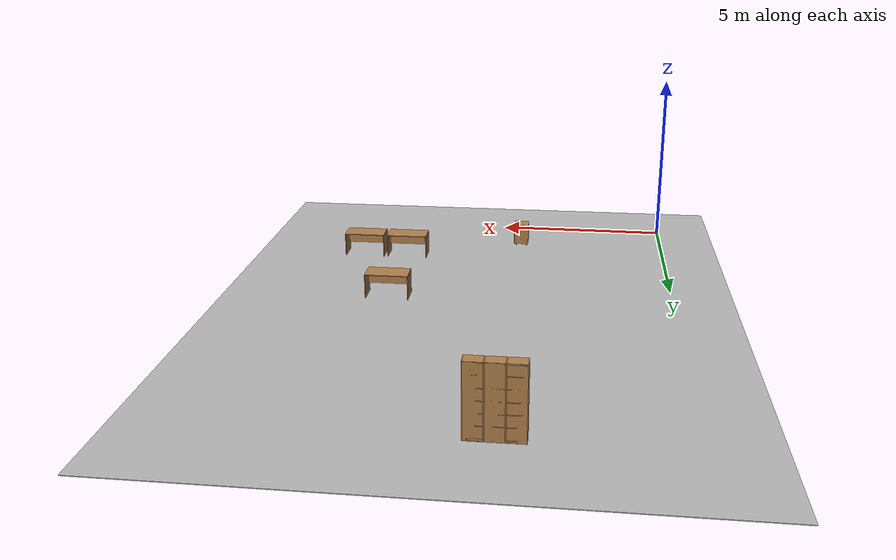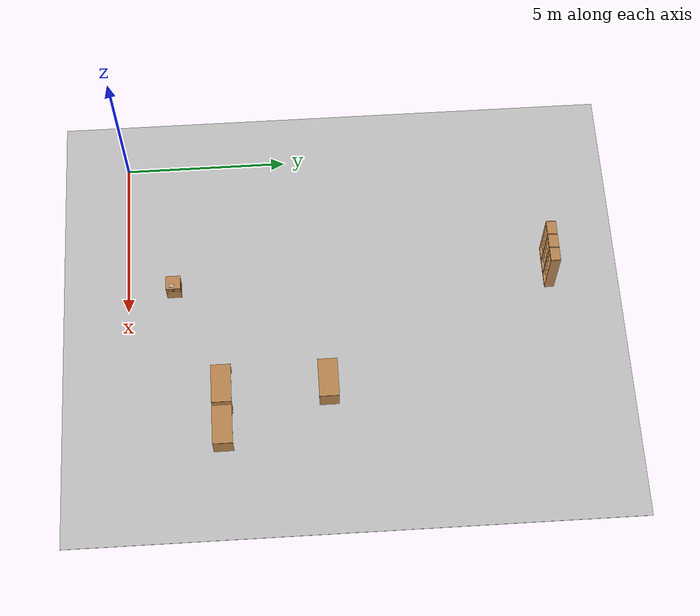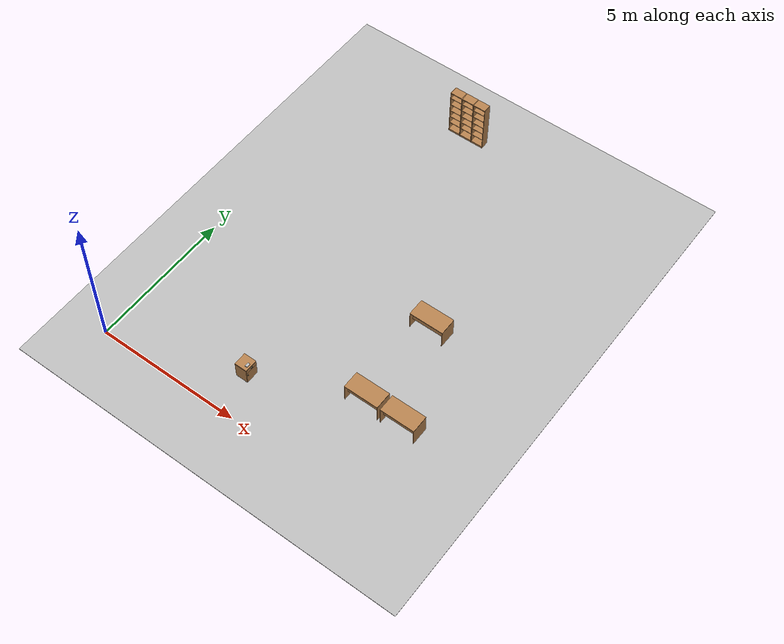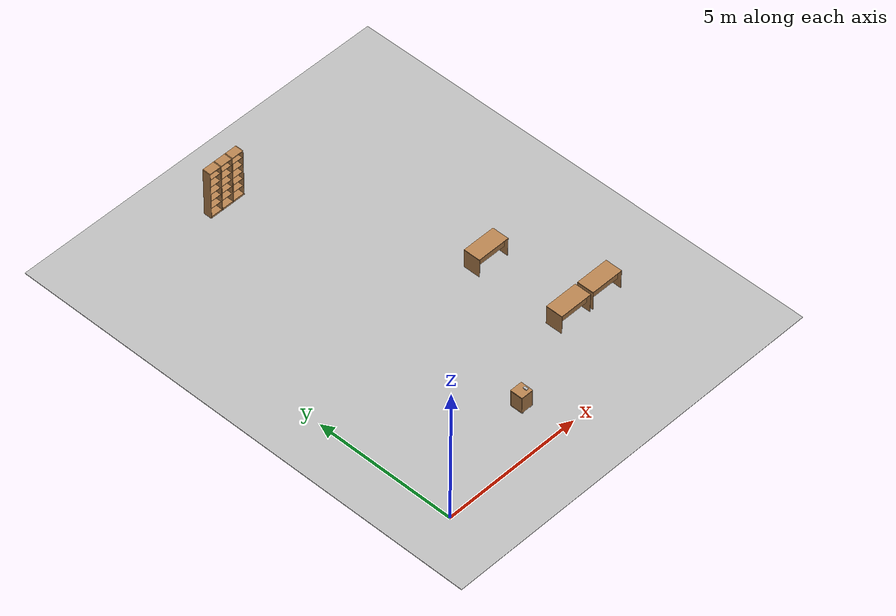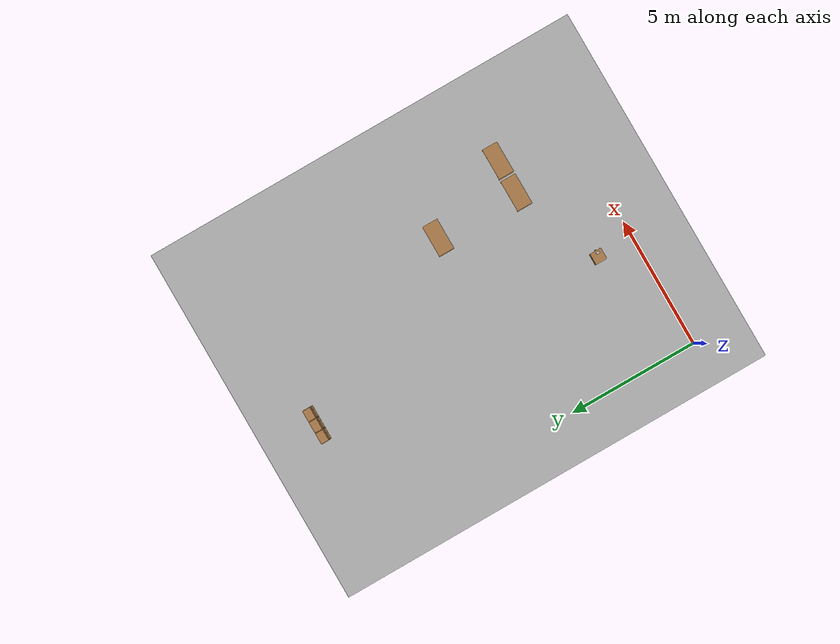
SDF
<sdf version="1.6">
 <world name="default">
  <model name="gplane">
   <pose>5.0375 6.59 0 0 -0 0</pose>
   <link name="body">
    <collision name="gplane_coll">
     <geometry><plane><normal>0 0 1</normal><size>10.075 13.18</size></plane></geometry>
     <surface><contact><ode><kp>1e+06</kp><kd>1</kd></ode></contact></surface>
     <laser_retro>2000</laser_retro>
    </collision>
    <visual name="gplane_vis">
     <geometry><plane><normal>0 0 1</normal><size>10.075 13.18</size></plane></geometry>
     <material>
      <script>
       <uri>model://base_materials/carpet/scripts</uri>
       <uri>model://base_materials/carpet/textures</uri>
       <name>carpet/carpet01</name>
      </script>
     </material>
     <cast_shadows>0</cast_shadows>
    </visual>
    <velocity_decay><linear>0</linear><angular>0</angular></velocity_decay>
   </link>
   <static>1</static>
  </model>
  <model name="wagon">
   <link name="link">
    <inertial>
     <mass>10</mass>
     <inertia><ixx>1</ixx><ixy>0</ixy><ixz>0</ixz><iyy>1</iyy><iyz>0</iyz><izz>1</izz></inertia>
    </inertial>
    <visual name="left_board">
     <pose>-0.2325 0.01 0.345 0 -0 0</pose>
     <geometry><box><size>0.415 0.02 0.59</size></box></geometry>
     <material>
      <script><uri>model://base_materials/wood/scripts/wood.material</uri><name>base_materials/wood</name></script>
     </material>
    </visual>
    <collision name="collision_left_board">
     <pose>-0.2325 0.01 0.345 0 -0 0</pose>
     <geometry><box><size>0.415 0.02 0.59</size></box></geometry>
    </collision>
    <visual name="right_board">
     <pose>-0.2325 0.4325 0.345 0 -0 0</pose>
     <geometry><box><size>0.415 0.02 0.59</size></box></geometry>
     <material>
      <script><uri>model://base_materials/wood/scripts/wood.material</uri><name>base_materials/wood</name></script>
     </material>
    </visual>
    <collision name="collision_right_board">
     <pose>-0.2325 0.4325 0.345 0 -0 0</pose>
     <geometry><box><size>0.415 0.02 0.59</size></box></geometry>
    </collision>
    <visual name="top_board">
     <pose>-0.22 0.2225 0.655 0 -0 0</pose>
     <geometry><box><size>0.44 0.445 0.03</size></box></geometry>
     <material>
      <script><uri>model://base_materials/wood/scripts/wood.material</uri><name>base_materials/wood</name></script>
     </material>
    </visual>
    <collision name="collision_top_board">
     <pose>-0.22 0.2225 0.655 0 -0 0</pose>
     <geometry><box><size>0.44 0.445 0.03</size></box></geometry>
    </collision>
    <visual name="back_board">
     <pose>-0.425 0.2225 0.345 0 -0 0</pose>
     <geometry><box><size>0.02 0.405 0.59</size></box></geometry>
     <material>
      <script><uri>model://base_materials/wood/scripts/wood.material</uri><name>base_materials/wood</name></script>
     </material>
    </visual>
    <collision name="collision_back_board">
     <pose>-0.425 0.2225 0.345 0 -0 0</pose>
     <geometry><box><size>0.02 0.405 0.59</size></box></geometry>
    </collision>
    <visual name="bottom_board">
     <pose>-0.2325 0.2225 0.06 0 -0 0</pose>
     <geometry><box><size>0.415 0.405 0.02</size></box></geometry>
     <material>
      <script><uri>model://base_materials/wood/scripts/wood.material</uri><name>base_materials/wood</name></script>
     </material>
    </visual>
    <collision name="collision_bottom_board">
     <pose>-0.2325 0.2225 0.06 0 -0 0</pose>
     <geometry><box><size>0.415 0.405 0.02</size></box></geometry>
    </collision>
    <visual name="1st_drawer">
     <pose>-0.0125 0.2225 0.57 0 -0 0</pose>
     <geometry><box><size>0.025 0.445 0.14</size></box></geometry>
     <material>
      <script><uri>model://base_materials/wood/scripts/wood.material</uri><name>base_materials/wood</name></script>
     </material>
    </visual>
    <collision name="collision_1st_drawer">
     <pose>-0.0125 0.2225 0.57 0 -0 0</pose>
     <geometry><box><size>0.025 0.445 0.14</size></box></geometry>
    </collision>
    <visual name="1st_drawer_handle_l1">
     <pose>0.0115 0.1895 0.6 3.14159 1.57079 3.14159</pose>
     <geometry><cylinder><radius>0.007</radius><length>0.023</length></cylinder></geometry>
     <material>
      <ambient>0.18431 0.3098 0.3098 1</ambient>
      <diffuse>0.18431 0.3098 0.3098 1</diffuse>
      <specular>0.1 0.1 0.1 1</specular>
     </material>
    </visual>
    <collision name="collision_1st_drawer_handle_l1">
     <pose>0.0115 0.1895 0.6 3.14159 1.57079 3.14159</pose>
     <geometry><cylinder><radius>0.007</radius><length>0.023</length></cylinder></geometry>
    </collision>
    <visual name="1st_drawer_handle_l2">
     <pose>0.023 0.1895 0.6 0 -0 0</pose>
     <geometry><sphere><radius>0.007</radius></sphere></geometry>
     <material>
      <ambient>0.18431 0.3098 0.3098 1</ambient>
      <diffuse>0.18431 0.3098 0.3098 1</diffuse>
      <specular>0.1 0.1 0.1 1</specular>
     </material>
    </visual>
    <collision name="collision_1st_drawer_handle_l2">
     <pose>0.023 0.1895 0.6 0 -0 0</pose>
     <geometry><sphere><radius>0.007</radius></sphere></geometry>
    </collision>
    <visual name="1st_drawer_handle_r1">
     <pose>0.0115 0.2555 0.6 3.14159 1.57079 3.14159</pose>
     <geometry><cylinder><radius>0.007</radius><length>0.023</length></cylinder></geometry>
     <material>
      <ambient>0.18431 0.3098 0.3098 1</ambient>
      <diffuse>0.18431 0.3098 0.3098 1</diffuse>
      <specular>0.1 0.1 0.1 1</specular>
     </material>
    </visual>
    <collision name="collision_1st_drawer_handle_r1">
     <pose>0.0115 0.2555 0.6 3.14159 1.57079 3.14159</pose>
     <geometry><cylinder><radius>0.007</radius><length>0.023</length></cylinder></geometry>
    </collision>
    <visual name="1st_drawer_handle_r2">
     <pose>0.023 0.2555 0.6 0 -0 0</pose>
     <geometry><sphere><radius>0.007</radius></sphere></geometry>
     <material>
      <ambient>0.18431 0.3098 0.3098 1</ambient>
      <diffuse>0.18431 0.3098 0.3098 1</diffuse>
      <specular>0.1 0.1 0.1 1</specular>
     </material>
    </visual>
    <collision name="collision_1st_drawer_handle_r2">
     <pose>0.023 0.2555 0.6 0 -0 0</pose>
     <geometry><sphere><radius>0.007</radius></sphere></geometry>
    </collision>
    <visual name="1st_drawer_handle_center">
     <pose>0.023 0.2225 0.6 1.5708 -0 0</pose>
     <geometry><cylinder><radius>0.007</radius><length>0.066</length></cylinder></geometry>
     <material>
      <ambient>0.18431 0.3098 0.3098 1</ambient>
      <diffuse>0.18431 0.3098 0.3098 1</diffuse>
      <specular>0.1 0.1 0.1 1</specular>
     </material>
    </visual>
    <collision name="collision_1st_drawer_handle_center">
     <pose>0.023 0.2225 0.6 1.5708 -0 0</pose>
     <geometry><cylinder><radius>0.007</radius><length>0.066</length></cylinder></geometry>
    </collision>
    <visual name="2nd_drawer">
     <pose>-0.0125 0.2225 0.275 0 -0 0</pose>
     <geometry><box><size>0.025 0.445 0.45</size></box></geometry>
     <material>
      <script><uri>model://base_materials/wood/scripts/wood.material</uri><name>base_materials/wood</name></script>
     </material>
    </visual>
    <collision name="collision_2nd_drawer">
     <pose>-0.0125 0.2225 0.275 0 -0 0</pose>
     <geometry><box><size>0.025 0.445 0.45</size></box></geometry>
    </collision>
    <visual name="2nd_drawer_handle_top1">
     <pose>0.0115 0.04 0.47 3.14159 1.57079 3.14159</pose>
     <geometry><cylinder><radius>0.007</radius><length>0.023</length></cylinder></geometry>
     <material>
      <ambient>0.18431 0.3098 0.3098 1</ambient>
      <diffuse>0.18431 0.3098 0.3098 1</diffuse>
      <specular>0.1 0.1 0.1 1</specular>
     </material>
    </visual>
    <collision name="collision_2nd_drawer_handle_top1">
     <pose>0.0115 0.04 0.47 3.14159 1.57079 3.14159</pose>
     <geometry><cylinder><radius>0.007</radius><length>0.023</length></cylinder></geometry>
    </collision>
    <visual name="2nd_drawer_handle_top2">
     <pose>0.023 0.04 0.47 0 -0 0</pose>
     <geometry><sphere><radius>0.007</radius></sphere></geometry>
     <material>
      <ambient>0.18431 0.3098 0.3098 1</ambient>
      <diffuse>0.18431 0.3098 0.3098 1</diffuse>
      <specular>0.1 0.1 0.1 1</specular>
     </material>
    </visual>
    <collision name="2nd_drawer_handle_top2">
     <pose>0.023 0.04 0.47 0 -0 0</pose>
     <geometry><sphere><radius>0.007</radius></sphere></geometry>
    </collision>
    <visual name="2nd_drawer_handle_bottom1">
     <pose>0.0115 0.04 0.404 3.14159 1.57079 3.14159</pose>
     <geometry><cylinder><radius>0.007</radius><length>0.023</length></cylinder></geometry>
     <material>
      <ambient>0.18431 0.3098 0.3098 1</ambient>
      <diffuse>0.18431 0.3098 0.3098 1</diffuse>
      <specular>0.1 0.1 0.1 1</specular>
     </material>
    </visual>
    <collision name="collision_2nd_drawer_handle_bottom1">
     <pose>0.0115 0.04 0.404 3.14159 1.57079 3.14159</pose>
     <geometry><cylinder><radius>0.007</radius><length>0.023</length></cylinder></geometry>
    </collision>
    <visual name="2nd_drawer_handle_bottom2">
     <pose>0.023 0.04 0.404 0 -0 0</pose>
     <geometry><sphere><radius>0.007</radius></sphere></geometry>
     <material>
      <ambient>0.18431 0.3098 0.3098 1</ambient>
      <diffuse>0.18431 0.3098 0.3098 1</diffuse>
      <specular>0.1 0.1 0.1 1</specular>
     </material>
    </visual>
    <collision name="2nd_drawer_handle_bottom2">
     <pose>0.023 0.04 0.404 0 -0 0</pose>
     <geometry><sphere><radius>0.007</radius></sphere></geometry>
    </collision>
    <visual name="2nd_drawer_handle_center">
     <pose>0.023 0.04 0.437 0 -0 0</pose>
     <geometry><cylinder><radius>0.007</radius><length>0.066</length></cylinder></geometry>
     <material>
      <ambient>0.18431 0.3098 0.3098 1</ambient>
      <diffuse>0.18431 0.3098 0.3098 1</diffuse>
      <specular>0.1 0.1 0.1 1</specular>
     </material>
    </visual>
    <collision name="collision_2nd_drawer_handle_center">
     <pose>0.023 0.04 0.437 0 -0 0</pose>
     <geometry><cylinder><radius>0.007</radius><length>0.066</length></cylinder></geometry>
    </collision>
    <visual name="left_front_caster">
     <pose>-0.07 0.025 0.025 3.14159 1.57079 3.14159</pose>
     <geometry><cylinder><radius>0.025</radius><length>0.035</length></cylinder></geometry>
     <material><script><name>Gazebo/Black</name><uri>__default__</uri></script></material>
    </visual>
    <collision name="collision_left_front_caster">
     <pose>-0.07 0.025 0.025 3.14159 1.57079 3.14159</pose>
     <geometry><cylinder><radius>0.025</radius><length>0.035</length></cylinder></geometry>
    </collision>
    <visual name="right_front_caster">
     <pose>-0.07 0.42 0.025 3.14159 1.57079 3.14159</pose>
     <geometry><cylinder><radius>0.025</radius><length>0.035</length></cylinder></geometry>
     <material><script><name>Gazebo/Black</name><uri>__default__</uri></script></material>
    </visual>
    <collision name="collision_right_front_caster">
     <pose>-0.07 0.42 0.025 3.14159 1.57079 3.14159</pose>
     <geometry><cylinder><radius>0.025</radius><length>0.035</length></cylinder></geometry>
    </collision>
    <visual name="left_back_caster">
     <pose>-0.39 0.025 0.025 3.14159 1.57079 3.14159</pose>
     <geometry><cylinder><radius>0.025</radius><length>0.035</length></cylinder></geometry>
     <material><script><name>Gazebo/Black</name><uri>__default__</uri></script></material>
    </visual>
    <collision name="collision_left_back_caster">
     <pose>-0.39 0.025 0.025 3.14159 1.57079 3.14159</pose>
     <geometry><cylinder><radius>0.025</radius><length>0.035</length></cylinder></geometry>
    </collision>
    <visual name="right_back_caster">
     <pose>-0.39 0.42 0.025 3.14159 1.57079 3.14159</pose>
     <geometry><cylinder><radius>0.025</radius><length>0.035</length></cylinder></geometry>
     <material><script><name>Gazebo/Black</name><uri>__default__</uri></script></material>
    </visual>
    <collision name="collision_right_back_caster">
     <pose>-0.39 0.42 0.025 3.14159 1.57079 3.14159</pose>
     <geometry><cylinder><radius>0.025</radius><length>0.035</length></cylinder></geometry>
    </collision>
    <velocity_decay><linear>0</linear><angular>0</angular></velocity_decay>
   </link>
   <static>1</static>
   <pose>4.6 1.2 0 0 -0 0</pose>
  </model>
  <model name="nasal_cupsul">
   <link name="link">
    <inertial>
     <mass>0.1</mass>
     <inertia><ixx>0.0001</ixx><ixy>0</ixy><ixz>0</ixz><iyy>0.0001</iyy><iyz>0</iyz><izz>0.0001</izz></inertia>
    </inertial>
    <visual name="capsul">
     <geometry><box><size>0.083 0.135 0.026</size></box></geometry>
     <material>
      <script>
       <uri>model://nasal_inflammation_capsul/scripts</uri>
       <uri>model://nasal_inflammation_capsul/textures</uri>
       <name>oral_medicine/nasal_inflammation_capsule</name>
      </script>
     </material>
    </visual>
    <collision name="collision_capsul">
     <geometry><box><size>0.083 0.135 0.026</size></box></geometry>
     <surface>
      <bounce><restitution_coefficient>0.2</restitution_coefficient><threshold>0</threshold></bounce>
      <contact><ode><max_vel>10</max_vel></ode></contact>
     </surface>
    </collision>
    <velocity_decay><linear>0</linear><angular>0</angular></velocity_decay>
   </link>
   <static>0</static>
   <pose>4.50002 1.37996 0.683 0 0 -0.00293</pose>
  </model>
  <model name="office_desk01">
   <link name="link">
    <inertial>
     <mass>10</mass>
     <inertia><ixx>1</ixx><ixy>0</ixy><ixz>0</ixz><iyy>1</iyy><iyz>0</iyz><izz>1</izz></inertia>
    </inertial>
    <visual name="top_board">
     <pose>-0.3 0.6 0.69 0 -0 0</pose>
     <geometry><box><size>0.6 1.2 0.02</size></box></geometry>
     <material>
      <script>
       <uri>model://base_materials/wood/scripts/wood.material</uri>
       <name>base_materials/dark_wood</name>
      </script>
     </material>
    </visual>
    <collision name="collision_top_board">
     <pose>-0.3 0.6 0.69 0 -0 0</pose>
     <geometry><box><size>0.6 1.2 0.02</size></box></geometry>
    </collision>
    <visual name="left_board">
     <pose>-0.3 0.01 0.34 0 -0 0</pose>
     <geometry><box><size>0.6 0.02 0.68</size></box></geometry>
     <material>
      <script>
       <uri>model://base_materials/wood/scripts/wood.material</uri>
       <name>base_materials/dark_wood</name>
      </script>
     </material>
    </visual>
    <collision name="collision_left_board">
     <pose>-0.3 0.01 0.34 0 -0 0</pose>
     <geometry><box><size>0.6 0.02 0.68</size></box></geometry>
    </collision>
    <visual name="right_board">
     <pose>-0.3 1.19 0.34 0 -0 0</pose>
     <geometry><box><size>0.6 0.02 0.68</size></box></geometry>
     <material>
      <script>
       <uri>model://base_materials/wood/scripts/wood.material</uri>
       <name>base_materials/dark_wood</name>
      </script>
     </material>
    </visual>
    <collision name="collision_right_board">
     <pose>-0.3 1.19 0.34 0 -0 0</pose>
     <geometry><box><size>0.6 0.02 0.68</size></box></geometry>
    </collision>
    <visual name="center_board">
     <pose>-0.14 0.6 0.49 0 -0 0</pose>
     <geometry><box><size>0.02 1.16 0.4</size></box></geometry>
     <material>
      <script>
       <uri>model://base_materials/wood/scripts/wood.material</uri>
       <name>base_materials/dark_wood</name>
      </script>
     </material>
    </visual>
    <collision name="ollision_center_board">
     <pose>-0.14 0.6 0.49 0 -0 0</pose>
     <geometry><box><size>0.02 1.16 0.4</size></box></geometry>
    </collision>
    <velocity_decay><linear>0</linear><angular>0</angular></velocity_decay>
   </link>
   <static>1</static>
   <pose>8.5 2.5 0 0 0 -1.5708</pose>
  </model>
  <model name="office_desk02">
   <link name="link">
    <inertial>
     <mass>10</mass>
     <inertia><ixx>1</ixx><ixy>0</ixy><ixz>0</ixz><iyy>1</iyy><iyz>0</iyz><izz>1</izz></inertia>
    </inertial>
    <visual name="top_board">
     <pose>-0.3 0.6 0.69 0 -0 0</pose>
     <geometry><box><size>0.6 1.2 0.02</size></box></geometry>
     <material>
      <script>
       <uri>model://base_materials/wood/scripts/wood.material</uri>
       <name>base_materials/dark_wood</name>
      </script>
     </material>
    </visual>
    <collision name="collision_top_board">
     <pose>-0.3 0.6 0.69 0 -0 0</pose>
     <geometry><box><size>0.6 1.2 0.02</size></box></geometry>
    </collision>
    <visual name="left_board">
     <pose>-0.3 0.01 0.34 0 -0 0</pose>
     <geometry><box><size>0.6 0.02 0.68</size></box></geometry>
     <material>
      <script>
       <uri>model://base_materials/wood/scripts/wood.material</uri>
       <name>base_materials/dark_wood</name>
      </script>
     </material>
    </visual>
    <collision name="collision_left_board">
     <pose>-0.3 0.01 0.34 0 -0 0</pose>
     <geometry><box><size>0.6 0.02 0.68</size></box></geometry>
    </collision>
    <visual name="right_board">
     <pose>-0.3 1.19 0.34 0 -0 0</pose>
     <geometry><box><size>0.6 0.02 0.68</size></box></geometry>
     <material>
      <script>
       <uri>model://base_materials/wood/scripts/wood.material</uri>
       <name>base_materials/dark_wood</name>
      </script>
     </material>
    </visual>
    <collision name="collision_right_board">
     <pose>-0.3 1.19 0.34 0 -0 0</pose>
     <geometry><box><size>0.6 0.02 0.68</size></box></geometry>
    </collision>
    <visual name="center_board">
     <pose>-0.14 0.6 0.49 0 -0 0</pose>
     <geometry><box><size>0.02 1.16 0.4</size></box></geometry>
     <material>
      <script>
       <uri>model://base_materials/wood/scripts/wood.material</uri>
       <name>base_materials/dark_wood</name>
      </script>
     </material>
    </visual>
    <collision name="ollision_center_board">
     <pose>-0.14 0.6 0.49 0 -0 0</pose>
     <geometry><box><size>0.02 1.16 0.4</size></box></geometry>
    </collision>
    <velocity_decay><linear>0</linear><angular>0</angular></velocity_decay>
   </link>
   <static>1</static>
   <pose>7.2 2.5 0 0 0 -1.5708</pose>
  </model>
  <model name="office_desk06">
   <link name="link">
    <inertial>
     <mass>10</mass>
     <inertia><ixx>1</ixx><ixy>0</ixy><ixz>0</ixz><iyy>1</iyy><iyz>0</iyz><izz>1</izz></inertia>
    </inertial>
    <visual name="top_board">
     <pose>-0.3 0.6 0.69 0 -0 0</pose>
     <geometry><box><size>0.6 1.2 0.02</size></box></geometry>
     <material>
      <script>
       <uri>model://base_materials/wood/scripts/wood.material</uri>
       <name>base_materials/dark_wood</name>
      </script>
     </material>
    </visual>
    <collision name="collision_top_board">
     <pose>-0.3 0.6 0.69 0 -0 0</pose>
     <geometry><box><size>0.6 1.2 0.02</size></box></geometry>
    </collision>
    <visual name="left_board">
     <pose>-0.3 0.01 0.34 0 -0 0</pose>
     <geometry><box><size>0.6 0.02 0.68</size></box></geometry>
     <material>
      <script>
       <uri>model://base_materials/wood/scripts/wood.material</uri>
       <name>base_materials/dark_wood</name>
      </script>
     </material>
    </visual>
    <collision name="collision_left_board">
     <pose>-0.3 0.01 0.34 0 -0 0</pose>
     <geometry><box><size>0.6 0.02 0.68</size></box></geometry>
    </collision>
    <visual name="right_board">
     <pose>-0.3 1.19 0.34 0 -0 0</pose>
     <geometry><box><size>0.6 0.02 0.68</size></box></geometry>
     <material>
      <script>
       <uri>model://base_materials/wood/scripts/wood.material</uri>
       <name>base_materials/dark_wood</name>
      </script>
     </material>
    </visual>
    <collision name="collision_right_board">
     <pose>-0.3 1.19 0.34 0 -0 0</pose>
     <geometry><box><size>0.6 0.02 0.68</size></box></geometry>
    </collision>
    <visual name="center_board">
     <pose>-0.14 0.6 0.49 0 -0 0</pose>
     <geometry><box><size>0.02 1.16 0.4</size></box></geometry>
     <material>
      <script>
       <uri>model://base_materials/wood/scripts/wood.material</uri>
       <name>base_materials/dark_wood</name>
      </script>
     </material>
    </visual>
    <collision name="ollision_center_board">
     <pose>-0.14 0.6 0.49 0 -0 0</pose>
     <geometry><box><size>0.02 1.16 0.4</size></box></geometry>
    </collision>
    <velocity_decay><linear>0</linear><angular>0</angular></velocity_decay>
   </link>
   <static>1</static>
   <pose>7.2 5.7 0 0 0 -1.5708</pose>
  </model>
  <model name="high_shelf01">
   <link name="link">
    <inertial>
     <mass>5</mass>
     <inertia><ixx>1</ixx><ixy>0</ixy><ixz>0</ixz><iyy>1</iyy><iyz>0</iyz><izz>1</izz></inertia>
    </inertial>
    <visual name="left_board">
     <pose>-0.1475 0.009 0.898 0 -0 0</pose>
     <geometry><box><size>0.295 0.018 1.796</size></box></geometry>
     <material>
      <script>
       <uri>model://base_materials/wood/scripts</uri>
       <uri>model://base_materials/wood/textures</uri>
       <name>base_materials/light_wood</name>
      </script>
     </material>
    </visual>
    <collision name="collision_left_board">
     <pose>-0.1475 0.009 0.898 0 -0 0</pose>
     <geometry><box><size>0.295 0.018 1.796</size></box></geometry>
    </collision>
    <visual name="right_board">
     <pose>-0.1475 0.441 0.898 0 -0 0</pose>
     <geometry><box><size>0.295 0.018 1.796</size></box></geometry>
     <material>
      <script>
       <uri>model://base_materials/wood/scripts</uri>
       <uri>model://base_materials/wood/textures</uri>
       <name>base_materials/light_wood</name>
      </script>
     </material>
    </visual>
    <collision name="collision_right_board">
     <pose>-0.1475 0.441 0.898 0 -0 0</pose>
     <geometry><box><size>0.295 0.018 1.796</size></box></geometry>
    </collision>
    <visual name="top_board">
     <pose>-0.1475 0.225 1.7825 0 -0 0</pose>
     <geometry><box><size>0.295 0.414 0.035</size></box></geometry>
     <material>
      <script>
       <uri>model://base_materials/wood/scripts</uri>
       <uri>model://base_materials/wood/textures</uri>
       <name>base_materials/light_wood</name>
      </script>
     </material>
    </visual>
    <collision name="collision_top_board">
     <pose>-0.1475 0.225 1.7825 0 -0 0</pose>
     <geometry><box><size>0.295 0.414 0.035</size></box></geometry>
    </collision>
    <visual name="1st_shelf">
     <pose>-0.162 0.225 1.51 0 -0 0</pose>
     <geometry><box><size>0.266 0.414 0.018</size></box></geometry>
     <material>
      <script>
       <uri>model://base_materials/wood/scripts</uri>
       <uri>model://base_materials/wood/textures</uri>
       <name>base_materials/light_wood</name>
      </script>
     </material>
    </visual>
    <collision name="collision_1st_shelf">
     <pose>-0.162 0.225 1.51 0 -0 0</pose>
     <geometry><box><size>0.266 0.414 0.018</size></box></geometry>
    </collision>
    <visual name="2nd_shelf">
     <pose>-0.162 0.225 1.22 0 -0 0</pose>
     <geometry><box><size>0.266 0.414 0.018</size></box></geometry>
     <material>
      <script>
       <uri>model://base_materials/wood/scripts</uri>
       <uri>model://base_materials/wood/textures</uri>
       <name>base_materials/light_wood</name>
      </script>
     </material>
    </visual>
    <collision name="collision_2nd_shelf">
     <pose>-0.162 0.225 1.22 0 -0 0</pose>
     <geometry><box><size>0.266 0.414 0.018</size></box></geometry>
    </collision>
    <visual name="3rd_shelf">
     <pose>-0.162 0.225 0.93 0 -0 0</pose>
     <geometry><box><size>0.266 0.414 0.018</size></box></geometry>
     <material>
      <script>
       <uri>model://base_materials/wood/scripts</uri>
       <uri>model://base_materials/wood/textures</uri>
       <name>base_materials/light_wood</name>
      </script>
     </material>
    </visual>
    <collision name="collision_3rd_shelf">
     <pose>-0.162 0.225 0.93 0 -0 0</pose>
     <geometry><box><size>0.266 0.414 0.018</size></box></geometry>
    </collision>
    <visual name="4th_shelf">
     <pose>-0.162 0.225 0.65 0 -0 0</pose>
     <geometry><box><size>0.266 0.414 0.018</size></box></geometry>
     <material>
      <script>
       <uri>model://base_materials/wood/scripts</uri>
       <uri>model://base_materials/wood/textures</uri>
       <name>base_materials/light_wood</name>
      </script>
     </material>
    </visual>
    <collision name="collision_4th_shelf">
     <pose>-0.162 0.225 0.65 0 -0 0</pose>
     <geometry><box><size>0.266 0.414 0.018</size></box></geometry>
    </collision>
    <visual name="5th_shelf">
     <pose>-0.162 0.225 0.36 0 -0 0</pose>
     <geometry><box><size>0.266 0.414 0.018</size></box></geometry>
     <material>
      <script>
       <uri>model://base_materials/wood/scripts</uri>
       <uri>model://base_materials/wood/textures</uri>
       <name>base_materials/light_wood</name>
      </script>
     </material>
    </visual>
    <collision name="collision_5th_shelf">
     <pose>-0.162 0.225 0.36 0 -0 0</pose>
     <geometry><box><size>0.266 0.414 0.018</size></box></geometry>
    </collision>
    <visual name="bottom_board">
     <pose>-0.1475 0.225 0.035 0 -0 0</pose>
     <geometry><box><size>0.295 0.414 0.07</size></box></geometry>
     <material>
      <script>
       <uri>model://base_materials/wood/scripts</uri>
       <uri>model://base_materials/wood/textures</uri>
       <name>base_materials/light_wood</name>
      </script>
     </material>
    </visual>
    <collision name="collision_bottom_board">
     <pose>-0.1475 0.225 0.035 0 -0 0</pose>
     <geometry><box><size>0.295 0.414 0.07</size></box></geometry>
    </collision>
    <visual name="back_board">
     <pose>-0.286 0.225 0.898 0 -0 0</pose>
     <geometry><box><size>0.018 0.414 1.796</size></box></geometry>
     <material>
      <script>
       <uri>model://base_materials/wood/scripts</uri>
       <uri>model://base_materials/wood/textures</uri>
       <name>base_materials/light_wood</name>
      </script>
     </material>
    </visual>
    <collision name="collision_back_board">
     <pose>-0.286 0.225 0.898 0 -0 0</pose>
     <geometry><box><size>0.018 0.414 1.796</size></box></geometry>
    </collision>
    <velocity_decay><linear>0</linear><angular>0</angular></velocity_decay>
   </link>
   <static>1</static>
   <pose>4.45 12.87 0 0 0 -1.5708</pose>
  </model>
  <model name="high_shelf02">
   <link name="link">
    <inertial>
     <mass>5</mass>
     <inertia><ixx>1</ixx><ixy>0</ixy><ixz>0</ixz><iyy>1</iyy><iyz>0</iyz><izz>1</izz></inertia>
    </inertial>
    <visual name="left_board">
     <pose>-0.1475 0.009 0.898 0 -0 0</pose>
     <geometry><box><size>0.295 0.018 1.796</size></box></geometry>
     <material>
      <script>
       <uri>model://base_materials/wood/scripts</uri>
       <uri>model://base_materials/wood/textures</uri>
       <name>base_materials/light_wood</name>
      </script>
     </material>
    </visual>
    <collision name="collision_left_board">
     <pose>-0.1475 0.009 0.898 0 -0 0</pose>
     <geometry><box><size>0.295 0.018 1.796</size></box></geometry>
    </collision>
    <visual name="right_board">
     <pose>-0.1475 0.441 0.898 0 -0 0</pose>
     <geometry><box><size>0.295 0.018 1.796</size></box></geometry>
     <material>
      <script>
       <uri>model://base_materials/wood/scripts</uri>
       <uri>model://base_materials/wood/textures</uri>
       <name>base_materials/light_wood</name>
      </script>
     </material>
    </visual>
    <collision name="collision_right_board">
     <pose>-0.1475 0.441 0.898 0 -0 0</pose>
     <geometry><box><size>0.295 0.018 1.796</size></box></geometry>
    </collision>
    <visual name="top_board">
     <pose>-0.1475 0.225 1.7825 0 -0 0</pose>
     <geometry><box><size>0.295 0.414 0.035</size></box></geometry>
     <material>
      <script>
       <uri>model://base_materials/wood/scripts</uri>
       <uri>model://base_materials/wood/textures</uri>
       <name>base_materials/light_wood</name>
      </script>
     </material>
    </visual>
    <collision name="collision_top_board">
     <pose>-0.1475 0.225 1.7825 0 -0 0</pose>
     <geometry><box><size>0.295 0.414 0.035</size></box></geometry>
    </collision>
    <visual name="1st_shelf">
     <pose>-0.162 0.225 1.51 0 -0 0</pose>
     <geometry><box><size>0.266 0.414 0.018</size></box></geometry>
     <material>
      <script>
       <uri>model://base_materials/wood/scripts</uri>
       <uri>model://base_materials/wood/textures</uri>
       <name>base_materials/light_wood</name>
      </script>
     </material>
    </visual>
    <collision name="collision_1st_shelf">
     <pose>-0.162 0.225 1.51 0 -0 0</pose>
     <geometry><box><size>0.266 0.414 0.018</size></box></geometry>
    </collision>
    <visual name="2nd_shelf">
     <pose>-0.162 0.225 1.22 0 -0 0</pose>
     <geometry><box><size>0.266 0.414 0.018</size></box></geometry>
     <material>
      <script>
       <uri>model://base_materials/wood/scripts</uri>
       <uri>model://base_materials/wood/textures</uri>
       <name>base_materials/light_wood</name>
      </script>
     </material>
    </visual>
    <collision name="collision_2nd_shelf">
     <pose>-0.162 0.225 1.22 0 -0 0</pose>
     <geometry><box><size>0.266 0.414 0.018</size></box></geometry>
    </collision>
    <visual name="3rd_shelf">
     <pose>-0.162 0.225 0.93 0 -0 0</pose>
     <geometry><box><size>0.266 0.414 0.018</size></box></geometry>
     <material>
      <script>
       <uri>model://base_materials/wood/scripts</uri>
       <uri>model://base_materials/wood/textures</uri>
       <name>base_materials/light_wood</name>
      </script>
     </material>
    </visual>
    <collision name="collision_3rd_shelf">
     <pose>-0.162 0.225 0.93 0 -0 0</pose>
     <geometry><box><size>0.266 0.414 0.018</size></box></geometry>
    </collision>
    <visual name="4th_shelf">
     <pose>-0.162 0.225 0.65 0 -0 0</pose>
     <geometry><box><size>0.266 0.414 0.018</size></box></geometry>
     <material>
      <script>
       <uri>model://base_materials/wood/scripts</uri>
       <uri>model://base_materials/wood/textures</uri>
       <name>base_materials/light_wood</name>
      </script>
     </material>
    </visual>
    <collision name="collision_4th_shelf">
     <pose>-0.162 0.225 0.65 0 -0 0</pose>
     <geometry><box><size>0.266 0.414 0.018</size></box></geometry>
    </collision>
    <visual name="5th_shelf">
     <pose>-0.162 0.225 0.36 0 -0 0</pose>
     <geometry><box><size>0.266 0.414 0.018</size></box></geometry>
     <material>
      <script>
       <uri>model://base_materials/wood/scripts</uri>
       <uri>model://base_materials/wood/textures</uri>
       <name>base_materials/light_wood</name>
      </script>
     </material>
    </visual>
    <collision name="collision_5th_shelf">
     <pose>-0.162 0.225 0.36 0 -0 0</pose>
     <geometry><box><size>0.266 0.414 0.018</size></box></geometry>
    </collision>
    <visual name="bottom_board">
     <pose>-0.1475 0.225 0.035 0 -0 0</pose>
     <geometry><box><size>0.295 0.414 0.07</size></box></geometry>
     <material>
      <script>
       <uri>model://base_materials/wood/scripts</uri>
       <uri>model://base_materials/wood/textures</uri>
       <name>base_materials/light_wood</name>
      </script>
     </material>
    </visual>
    <collision name="collision_bottom_board">
     <pose>-0.1475 0.225 0.035 0 -0 0</pose>
     <geometry><box><size>0.295 0.414 0.07</size></box></geometry>
    </collision>
    <visual name="back_board">
     <pose>-0.286 0.225 0.898 0 -0 0</pose>
     <geometry><box><size>0.018 0.414 1.796</size></box></geometry>
     <material>
      <script>
       <uri>model://base_materials/wood/scripts</uri>
       <uri>model://base_materials/wood/textures</uri>
       <name>base_materials/light_wood</name>
      </script>
     </material>
    </visual>
    <collision name="collision_back_board">
     <pose>-0.286 0.225 0.898 0 -0 0</pose>
     <geometry><box><size>0.018 0.414 1.796</size></box></geometry>
    </collision>
    <velocity_decay><linear>0</linear><angular>0</angular></velocity_decay>
   </link>
   <static>1</static>
   <pose>4 12.87 0 0 0 -1.5708</pose>
  </model>
  <model name="high_shelf03">
   <link name="link">
    <inertial>
     <mass>5</mass>
     <inertia><ixx>1</ixx><ixy>0</ixy><ixz>0</ixz><iyy>1</iyy><iyz>0</iyz><izz>1</izz></inertia>
    </inertial>
    <visual name="left_board">
     <pose>-0.1475 0.009 0.898 0 -0 0</pose>
     <geometry><box><size>0.295 0.018 1.796</size></box></geometry>
     <material>
      <script>
       <uri>model://base_materials/wood/scripts</uri>
       <uri>model://base_materials/wood/textures</uri>
       <name>base_materials/light_wood</name>
      </script>
     </material>
    </visual>
    <collision name="collision_left_board">
     <pose>-0.1475 0.009 0.898 0 -0 0</pose>
     <geometry><box><size>0.295 0.018 1.796</size></box></geometry>
    </collision>
    <visual name="right_board">
     <pose>-0.1475 0.441 0.898 0 -0 0</pose>
     <geometry><box><size>0.295 0.018 1.796</size></box></geometry>
     <material>
      <script>
       <uri>model://base_materials/wood/scripts</uri>
       <uri>model://base_materials/wood/textures</uri>
       <name>base_materials/light_wood</name>
      </script>
     </material>
    </visual>
    <collision name="collision_right_board">
     <pose>-0.1475 0.441 0.898 0 -0 0</pose>
     <geometry><box><size>0.295 0.018 1.796</size></box></geometry>
    </collision>
    <visual name="top_board">
     <pose>-0.1475 0.225 1.7825 0 -0 0</pose>
     <geometry><box><size>0.295 0.414 0.035</size></box></geometry>
     <material>
      <script>
       <uri>model://base_materials/wood/scripts</uri>
       <uri>model://base_materials/wood/textures</uri>
       <name>base_materials/light_wood</name>
      </script>
     </material>
    </visual>
    <collision name="collision_top_board">
     <pose>-0.1475 0.225 1.7825 0 -0 0</pose>
     <geometry><box><size>0.295 0.414 0.035</size></box></geometry>
    </collision>
    <visual name="1st_shelf">
     <pose>-0.162 0.225 1.51 0 -0 0</pose>
     <geometry><box><size>0.266 0.414 0.018</size></box></geometry>
     <material>
      <script>
       <uri>model://base_materials/wood/scripts</uri>
       <uri>model://base_materials/wood/textures</uri>
       <name>base_materials/light_wood</name>
      </script>
     </material>
    </visual>
    <collision name="collision_1st_shelf">
     <pose>-0.162 0.225 1.51 0 -0 0</pose>
     <geometry><box><size>0.266 0.414 0.018</size></box></geometry>
    </collision>
    <visual name="2nd_shelf">
     <pose>-0.162 0.225 1.22 0 -0 0</pose>
     <geometry><box><size>0.266 0.414 0.018</size></box></geometry>
     <material>
      <script>
       <uri>model://base_materials/wood/scripts</uri>
       <uri>model://base_materials/wood/textures</uri>
       <name>base_materials/light_wood</name>
      </script>
     </material>
    </visual>
    <collision name="collision_2nd_shelf">
     <pose>-0.162 0.225 1.22 0 -0 0</pose>
     <geometry><box><size>0.266 0.414 0.018</size></box></geometry>
    </collision>
    <visual name="3rd_shelf">
     <pose>-0.162 0.225 0.93 0 -0 0</pose>
     <geometry><box><size>0.266 0.414 0.018</size></box></geometry>
     <material>
      <script>
       <uri>model://base_materials/wood/scripts</uri>
       <uri>model://base_materials/wood/textures</uri>
       <name>base_materials/light_wood</name>
      </script>
     </material>
    </visual>
    <collision name="collision_3rd_shelf">
     <pose>-0.162 0.225 0.93 0 -0 0</pose>
     <geometry><box><size>0.266 0.414 0.018</size></box></geometry>
    </collision>
    <visual name="4th_shelf">
     <pose>-0.162 0.225 0.65 0 -0 0</pose>
     <geometry><box><size>0.266 0.414 0.018</size></box></geometry>
     <material>
      <script>
       <uri>model://base_materials/wood/scripts</uri>
       <uri>model://base_materials/wood/textures</uri>
       <name>base_materials/light_wood</name>
      </script>
     </material>
    </visual>
    <collision name="collision_4th_shelf">
     <pose>-0.162 0.225 0.65 0 -0 0</pose>
     <geometry><box><size>0.266 0.414 0.018</size></box></geometry>
    </collision>
    <visual name="5th_shelf">
     <pose>-0.162 0.225 0.36 0 -0 0</pose>
     <geometry><box><size>0.266 0.414 0.018</size></box></geometry>
     <material>
      <script>
       <uri>model://base_materials/wood/scripts</uri>
       <uri>model://base_materials/wood/textures</uri>
       <name>base_materials/light_wood</name>
      </script>
     </material>
    </visual>
    <collision name="collision_5th_shelf">
     <pose>-0.162 0.225 0.36 0 -0 0</pose>
     <geometry><box><size>0.266 0.414 0.018</size></box></geometry>
    </collision>
    <visual name="bottom_board">
     <pose>-0.1475 0.225 0.035 0 -0 0</pose>
     <geometry><box><size>0.295 0.414 0.07</size></box></geometry>
     <material>
      <script>
       <uri>model://base_materials/wood/scripts</uri>
       <uri>model://base_materials/wood/textures</uri>
       <name>base_materials/light_wood</name>
      </script>
     </material>
    </visual>
    <collision name="collision_bottom_board">
     <pose>-0.1475 0.225 0.035 0 -0 0</pose>
     <geometry><box><size>0.295 0.414 0.07</size></box></geometry>
    </collision>
    <visual name="back_board">
     <pose>-0.286 0.225 0.898 0 -0 0</pose>
     <geometry><box><size>0.018 0.414 1.796</size></box></geometry>
     <material>
      <script>
       <uri>model://base_materials/wood/scripts</uri>
       <uri>model://base_materials/wood/textures</uri>
       <name>base_materials/light_wood</name>
      </script>
     </material>
    </visual>
    <collision name="collision_back_board">
     <pose>-0.286 0.225 0.898 0 -0 0</pose>
     <geometry><box><size>0.018 0.414 1.796</size></box></geometry>
    </collision>
    <velocity_decay><linear>0</linear><angular>0</angular></velocity_decay>
   </link>
   <static>1</static>
   <pose>3.55 12.87 0 0 0 -1.5708</pose>
  </model>
  <model name="lawn_garden">
   <link name="link">
    <inertial>
     <mass>10</mass>
     <inertia><ixx>1</ixx><ixy>0</ixy><ixz>0</ixz><iyy>1</iyy><iyz>0</iyz><izz>1</izz></inertia>
    </inertial>
    <visual name="lawn_garden">
     <pose>0 0 -0.011 0 -0 0</pose>
     <geometry><box><size>14.075 17.185 0.02</size></box></geometry>
     <material>
      <script>
       <uri>model://base_materials/lawn/scripts/lawn.material</uri>
       <uri>model://base_materials/lawn/textures</uri>
       <name>lawn/lawn01</name>
      </script>
     </material>
    </visual>
    <collision name="collision_lawn_garden">
     <pose>0 0 -0.011 0 -0 0</pose>
     <geometry><box><size>14.075 17.185 0.02</size></box></geometry>
    </collision>
    <velocity_decay><linear>0</linear><angular>0</angular></velocity_decay>
   </link>
   <static>1</static>
   <pose>5.375 6.59 0 0 -0 0</pose>
  </model>
 </world>
</sdf>
